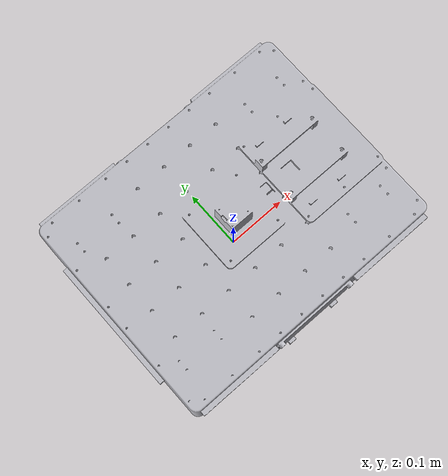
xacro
<?xml version='1.0' encoding='utf-8'?>
<robot xmlns:xacro="http://www.ros.org/wiki/xacro">
  <link name="base_footprint" />

  <link name="base_link">
    <inertial>
      <origin xyz="-0.0003553128255081884 -0.01259515577682061 0.04627232782888175" rpy="0 0 0" />
      <mass value="3.9702124117925144" />
      <inertia ixx="0.044619" iyy="0.066132" izz="0.098089" ixy="-0.000379" iyz="-0.00061" ixz="-0.00129" />
    </inertial>
    <visual>
      <origin xyz="0 0 0" rpy="0 0 0" />
      <geometry>
        <mesh filename="file://$(find horizon_description)/meshes/base_link.stl" scale="0.001 0.001 0.001" />
      </geometry>
      <material name="silver" />
    </visual>
    <collision>
      <origin xyz="0 0 0" rpy="0 0 0" />
      <geometry>
        <mesh filename="file://$(find horizon_description)/meshes/base_link.stl" scale="0.001 0.001 0.001" />
      </geometry>
    </collision>
  </link>

  <joint name="base_footprint_joint" type="fixed">
    <origin xyz="0 0 0.0425" rpy="0 0 0" />
    <parent link="base_footprint" />
    <child link="base_link" />
  </joint>

</robot>
